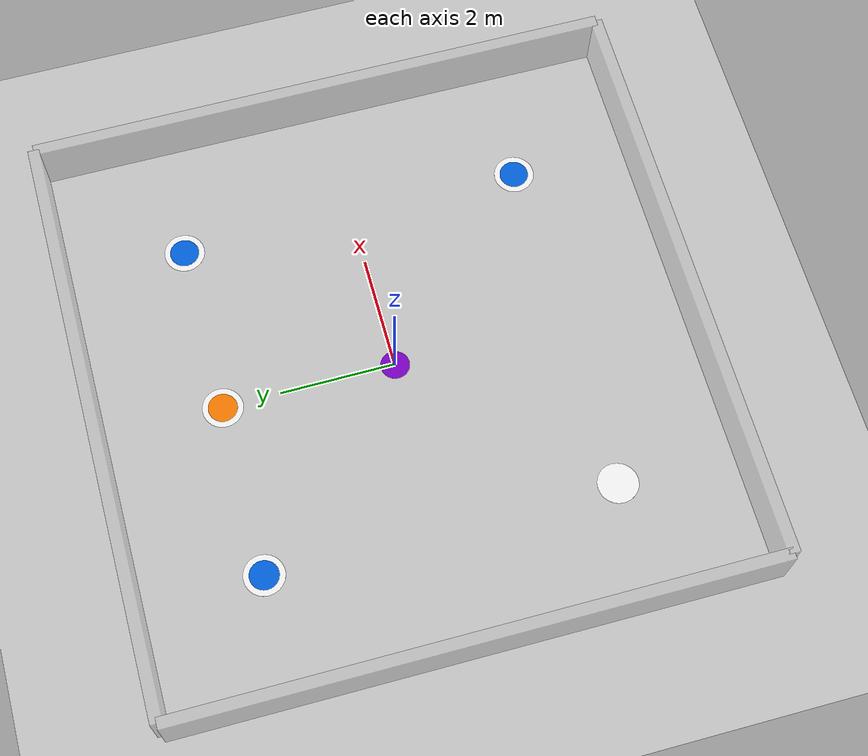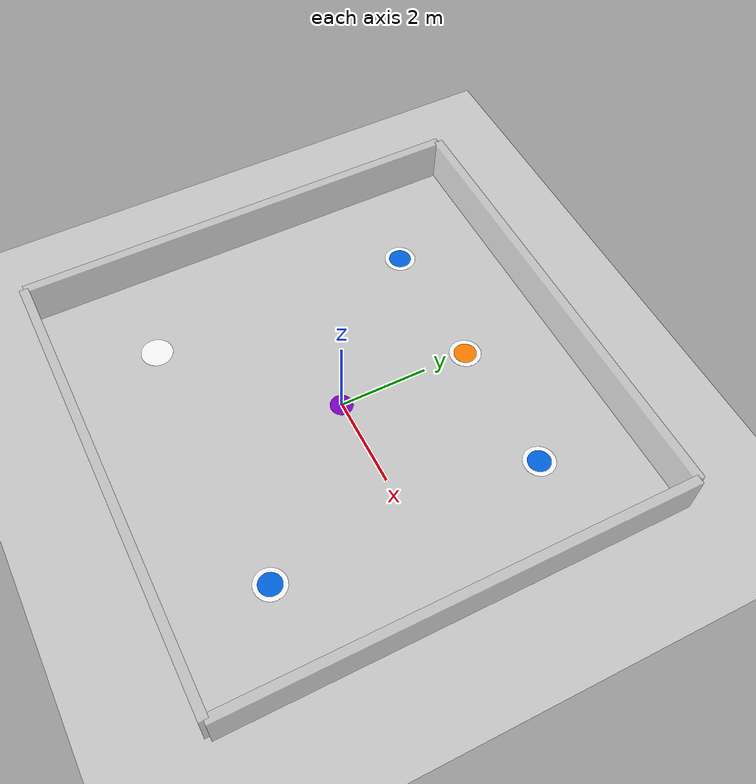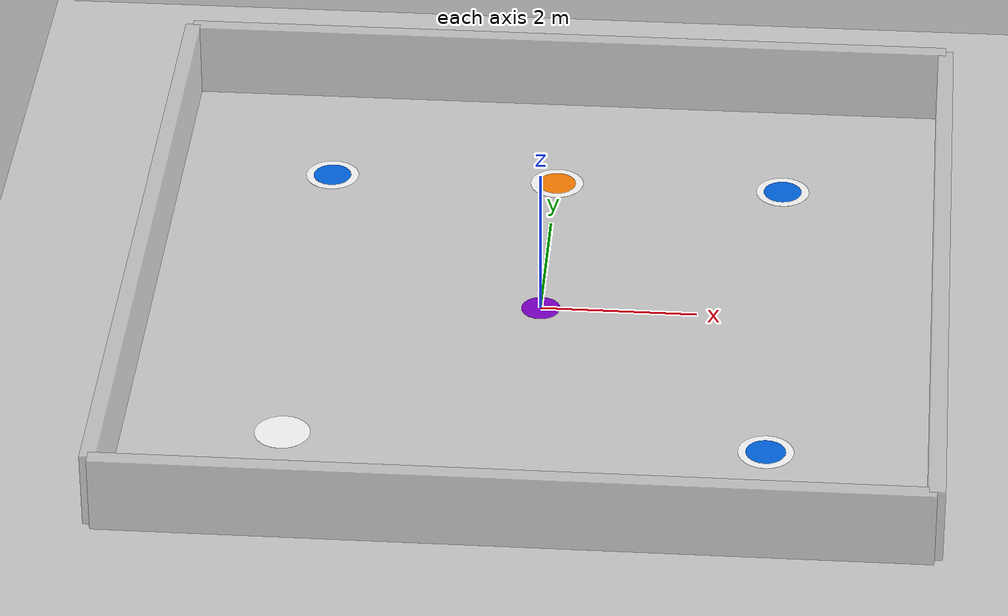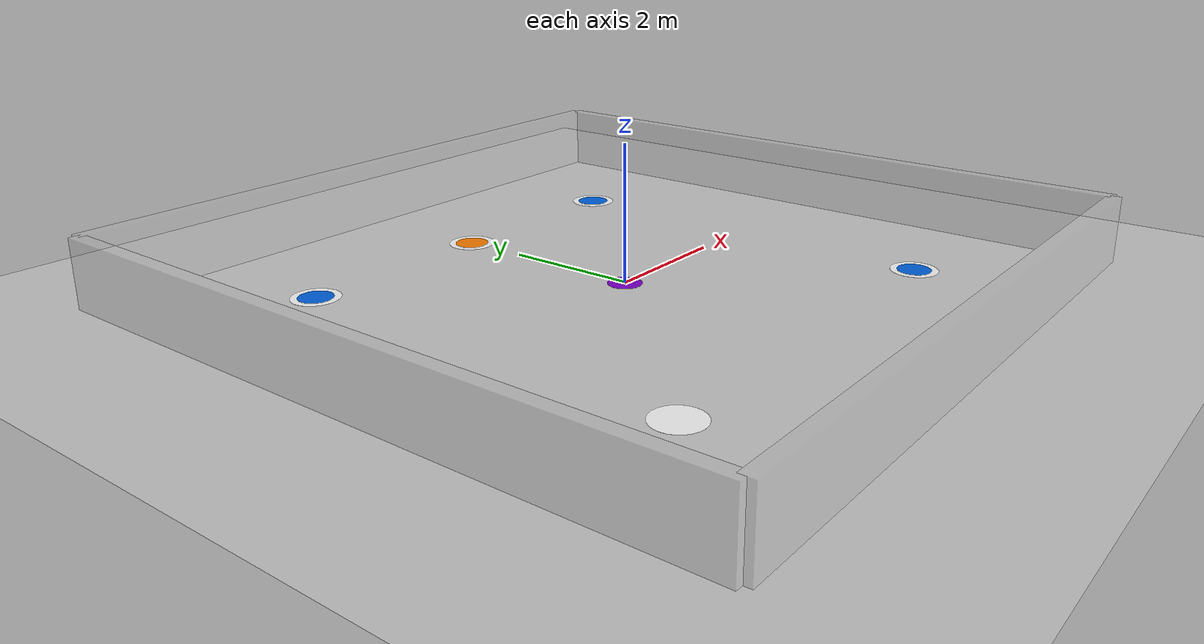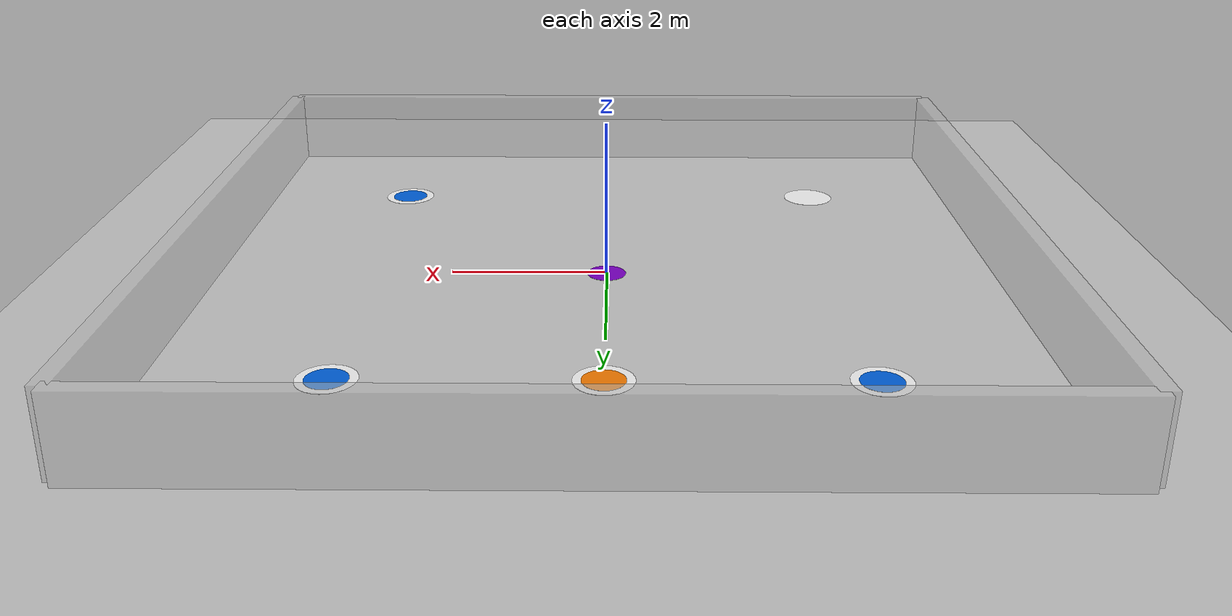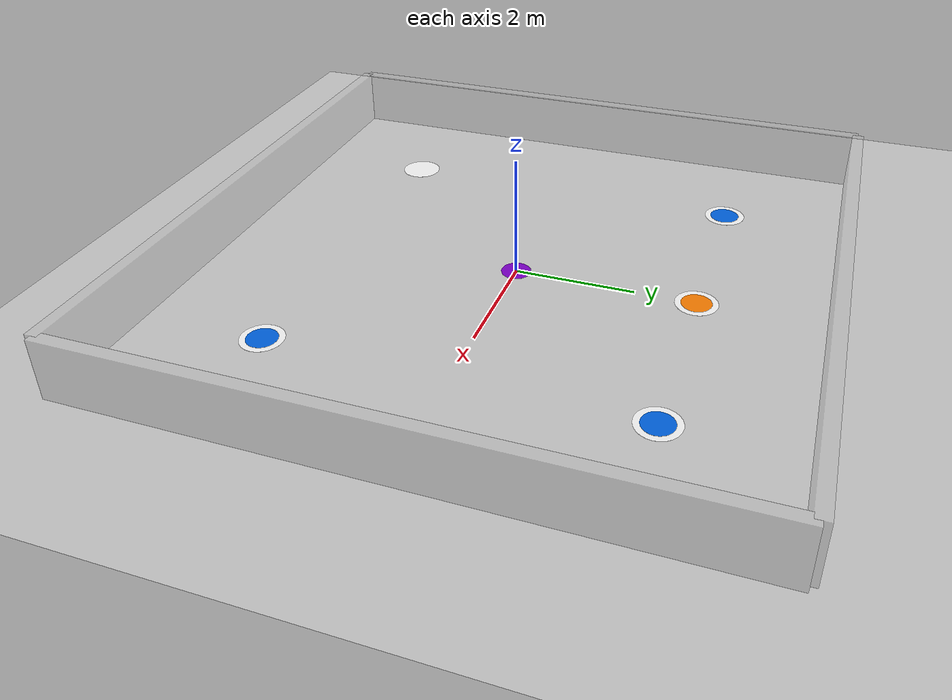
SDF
<?xml version="1.0" ?>
<sdf version="1.6">
  <world name="nav_test_world">

    <!-- ===== Lighting ===== -->
    <include>
      <uri>https://fuel.gazebosim.org/1.0/OpenRobotics/models/Sun</uri>
    </include>

    <!-- ===== Ground plane ===== -->
    <include>
      <uri>https://fuel.gazebosim.org/1.0/OpenRobotics/models/Ground Plane</uri>
    </include>

    <!-- ===== Physics ===== -->
    <physics type="ode">
      <real_time_update_rate>1000.0</real_time_update_rate>
      <max_step_size>0.001</max_step_size>
      <real_time_factor>1</real_time_factor>
    </physics>

    <!-- WP0 — Origin / Home (PURPLE) -->
    <model name="waypoint_0">
      <static>true</static>
      <pose>0 0 0 0 0 0</pose>
      <link name="link">
        <visual name="visual">
          <geometry>
            <cylinder>
              <radius>0.25</radius>
              <length>0.002</length>
            </cylinder>
          </geometry>
          <material>
            <ambient>0.5 0.0 0.8 1</ambient>
            <diffuse>0.5 0.0 0.8 1</diffuse>
            <specular>0.1 0.1 0.1 1</specular>
          </material>
        </visual>
      </link>
    </model>

    <!-- WP1 — (-3, 3) (BLUE) -->
    <model name="waypoint_1">
      <static>true</static>
      <pose>-3 3 0 0 0 0</pose>
      <link name="link">
        <visual name="visual">
          <geometry>
            <cylinder>
              <radius>0.25</radius>
              <length>0.002</length>
            </cylinder>
          </geometry>
          <material>
            <ambient>0.0 0.4 0.9 1</ambient>
            <diffuse>0.0 0.4 0.9 1</diffuse>
          </material>
        </visual>
      </link>
    </model>

    <!-- WP1 outer ring (visual helper) -->
    <model name="waypoint_1_ring">
      <static>true</static>
      <pose>-3 3 0 0 0 0</pose>
      <link name="link">
        <visual name="visual">
          <geometry>
            <cylinder>
              <radius>0.35</radius>
              <length>0.001</length>
            </cylinder>
          </geometry>
          <material>
            <ambient>1 1 1 1</ambient>
            <diffuse>1 1 1 1</diffuse>
          </material>
        </visual>
      </link>
    </model>

    <!-- WP2 — (3, 3) (BLUE) -->
    <model name="waypoint_2">
      <static>true</static>
      <pose>3 3 0 0 0 0</pose>
      <link name="link">
        <visual name="visual">
          <geometry>
            <cylinder>
              <radius>0.25</radius>
              <length>0.002</length>
            </cylinder>
          </geometry>
          <material>
            <ambient>0.0 0.4 0.9 1</ambient>
            <diffuse>0.0 0.4 0.9 1</diffuse>
          </material>
        </visual>
      </link>
    </model>

    <model name="waypoint_2_ring">
      <static>true</static>
      <pose>3 3 0 0 0 0</pose>
      <link name="link">
        <visual name="visual">
          <geometry>
            <cylinder>
              <radius>0.35</radius>
              <length>0.001</length>
            </cylinder>
          </geometry>
          <material>
            <ambient>1 1 1 1</ambient>
            <diffuse>1 1 1 1</diffuse>
          </material>
        </visual>
      </link>
    </model>

    <!-- WP3 — (-3, -3) (BLUE) -->
    <model name="waypoint_3">
      <static>true</static>
      <pose>-3 -3 0 0 0 0</pose>
      <link name="link">
        <visual name="visual">
          <geometry>
            <cylinder>
              <radius>0.25</radius>
              <length>0.002</length>
            </cylinder>
          </geometry>
          <material>
            <ambient>0.0 0.4 0.9 1</ambient>
            <diffuse>0.0 0.4 0.9 1</diffuse>
          </material>
        </visual>
      </link>
    </model>

    <model name="waypoint_3_ring">
      <static>true</static>
      <pose>-3 -3 0.001 0 0 0</pose>
      <link name="link">
        <visual name="visual">
          <geometry>
            <cylinder>
              <radius>0.35</radius>
              <length>0.001</length>
            </cylinder>
          </geometry>
          <material>
            <ambient>1 1 1 1</ambient>
            <diffuse>1 1 1 1</diffuse>
          </material>
        </visual>
      </link>
    </model>

    <!-- WP4 — (3, -3) (BLUE) -->
    <model name="waypoint_4">
      <static>true</static>
      <pose>3 -3 0.001 0 0 0</pose>
      <link name="link">
        <visual name="visual">
          <geometry>
            <cylinder>
              <radius>0.25</radius>
              <length>0.002</length>
            </cylinder>
          </geometry>
          <material>
            <ambient>0.0 0.4 0.9 1</ambient>
            <diffuse>0.0 0.4 0.9 1</diffuse>
          </material>
        </visual>
      </link>
    </model>

    <model name="waypoint_4_ring">
      <static>true</static>
      <pose>3 -3 0.001 0 0 0</pose>
      <link name="link">
        <visual name="visual">
          <geometry>
            <cylinder>
              <radius>0.35</radius>
              <length>0.001</length>
            </cylinder>
          </geometry>
          <material>
            <ambient>1 1 1 1</ambient>
            <diffuse>1 1 1 1</diffuse>
          </material>
        </visual>
      </link>
    </model>

    <!-- WP5 — (0, 3) (ORANGE) -->
    <model name="waypoint_5">
      <static>true</static>
      <pose>0 3 0.001 0 0 0</pose>
      <link name="link">
        <visual name="visual">
          <geometry>
            <cylinder>
              <radius>0.25</radius>
              <length>0.002</length>
            </cylinder>
          </geometry>
          <material>
            <ambient>1.0 0.5 0.0 1</ambient>
            <diffuse>1.0 0.5 0.0 1</diffuse>
          </material>
        </visual>
      </link>
    </model>

    <model name="waypoint_5_ring">
      <static>true</static>
      <pose>0 3 0.001 0 0 0</pose>
      <link name="link">
        <visual name="visual">
          <geometry>
            <cylinder>
              <radius>0.35</radius>
              <length>0.001</length>
            </cylinder>
          </geometry>
          <material>
            <ambient>1 1 1 1</ambient>
            <diffuse>1 1 1 1</diffuse>
          </material>
        </visual>
      </link>
    </model>

    <!-- ===== Boundary walls (optional — helps robot not wander off) ===== -->
    <!-- North wall -->
    <model name="wall_north">
      <static>true</static>
      <pose>0 5.1 0.5 0 0 0</pose>
      <link name="link">
        <visual name="visual">
          <geometry>
            <box><size>10.2 0.2 1.0</size></box>
          </geometry>
          <material>
            <ambient>0.8 0.8 0.8 0.5</ambient>
            <diffuse>0.8 0.8 0.8 0.5</diffuse>
          </material>
        </visual>
        <collision name="collision">
          <geometry>
            <box><size>10.2 0.2 1.0</size></box>
          </geometry>
        </collision>
      </link>
    </model>

    <!-- South wall -->
    <model name="wall_south">
      <static>true</static>
      <pose>0 -5.1 0.5 0 0 0</pose>
      <link name="link">
        <visual name="visual">
          <geometry>
            <box><size>10.2 0.2 1.0</size></box>
          </geometry>
          <material>
            <ambient>0.8 0.8 0.8 0.5</ambient>
            <diffuse>0.8 0.8 0.8 0.5</diffuse>
          </material>
        </visual>
        <collision name="collision">
          <geometry>
            <box><size>10.2 0.2 1.0</size></box>
          </geometry>
        </collision>
      </link>
    </model>

    <!-- East wall -->
    <model name="wall_east">
      <static>true</static>
      <pose>5.1 0 0.5 0 0 0</pose>
      <link name="link">
        <visual name="visual">
          <geometry>
            <box><size>0.2 10.2 1.0</size></box>
          </geometry>
          <material>
            <ambient>0.8 0.8 0.8 0.5</ambient>
            <diffuse>0.8 0.8 0.8 0.5</diffuse>
          </material>
        </visual>
        <collision name="collision">
          <geometry>
            <box><size>0.2 10.2 1.0</size></box>
          </geometry>
        </collision>
      </link>
    </model>

    <!-- West wall -->
    <model name="wall_west">
      <static>true</static>
      <pose>-5.1 0 0.5 0 0 0</pose>
      <link name="link">
        <visual name="visual">
          <geometry>
            <box><size>0.2 10.2 1.0</size></box>
          </geometry>
          <material>
            <ambient>0.8 0.8 0.8 0.5</ambient>
            <diffuse>0.8 0.8 0.8 0.5</diffuse>
          </material>
        </visual>
        <collision name="collision">
          <geometry>
            <box><size>0.2 10.2 1.0</size></box>
          </geometry>
        </collision>
      </link>
    </model>

  </world>
</sdf>
